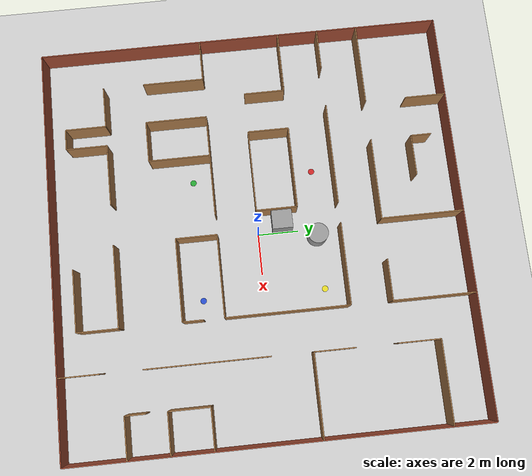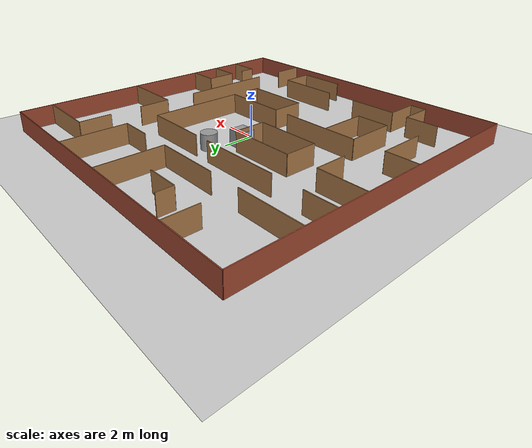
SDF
<sdf version="1.5">
 <world name="default">
  <light name="sun" type="directional">
   <pose>0 0 10 0 -0 0</pose>
   <diffuse>0.8 0.8 0.8 1</diffuse>
   <specular>0.2 0.2 0.2 1</specular>
   <attenuation>
    <range>1000</range>
    <constant>0.9</constant>
    <linear>0.01</linear>
    <quadratic>0.001</quadratic>
   </attenuation>
   <direction>-0.5 0.1 -0.9</direction>
  </light>
  <model name="ground_plane">
   <static>1</static>
   <link name="link">
    <collision name="collision">
     <geometry><plane><normal>0 0 1</normal><size>100 100</size></plane></geometry>
     <surface><friction><ode><mu>100</mu><mu2>50</mu2></ode></friction></surface>
    </collision>
    <visual name="visual">
     <cast_shadows>0</cast_shadows>
     <geometry><plane><normal>0 0 1</normal><size>100 100</size></plane></geometry>
     <material>
      <script><uri>file://media/materials/scripts/gazebo.material</uri><name>Gazebo/Grey</name></script>
     </material>
    </visual>
   </link>
  </model>
  <physics name="default_physics" default="0" type="ode">
   <real_time_update_rate>1000</real_time_update_rate>
   <max_step_size>0.001</max_step_size>
   <real_time_factor>1</real_time_factor>
   <ode>
    <solver>
     <type>quick</type>
     <iters>150</iters>
     <precon_iters>0</precon_iters>
     <sor>1.4</sor>
     <use_dynamic_moi_rescaling>1</use_dynamic_moi_rescaling>
    </solver>
    <constraints>
     <cfm>1e-05</cfm>
     <erp>0.2</erp>
     <contact_max_correcting_vel>2000</contact_max_correcting_vel>
     <contact_surface_layer>0.01</contact_surface_layer>
    </constraints>
   </ode>
  </physics>
  <model name="ros_symbol">
   <static>1</static>
   <link name="symbol">
    <collision name="OuterWall_0_Collision">
     <pose>0 -10 0 0 -0 0</pose>
     <geometry><box><size>20 0.05 2.5</size></box></geometry>
    </collision>
    <visual name="OuterWall_0_Visual">
     <pose>0 -10 0 0 -0 0</pose>
     <geometry><box><size>20 0.05 2.5</size></box></geometry>
     <material>
      <script><name>Gazebo/Bricks</name><uri>file://media/materials/scripts/gazebo.material</uri></script>
     </material>
    </visual>
    <collision name="OuterWall_1_Collision">
     <pose>0 10 0 0 -0 0</pose>
     <geometry><box><size>20 0.05 2.5</size></box></geometry>
    </collision>
    <visual name="OuterWall_1_Visual">
     <pose>0 10 0 0 -0 0</pose>
     <geometry><box><size>20 0.05 2.5</size></box></geometry>
     <material>
      <script><name>Gazebo/Bricks</name><uri>file://media/materials/scripts/gazebo.material</uri></script>
     </material>
    </visual>
    <collision name="OuterWall_2_Collision">
     <pose>10 0 0 0 -0 -1.5708</pose>
     <geometry><box><size>20 0.05 2.5</size></box></geometry>
    </collision>
    <visual name="OuterWall_2_Visual">
     <pose>10 0 0 0 -0 -1.5708</pose>
     <geometry><box><size>20 0.05 2.5</size></box></geometry>
     <material>
      <script><name>Gazebo/Bricks</name><uri>file://media/materials/scripts/gazebo.material</uri></script>
     </material>
    </visual>
    <collision name="OuterWall_3_Collision">
     <pose>-10 0 0 0 -0 -1.5708</pose>
     <geometry><box><size>20 0.05 2.5</size></box></geometry>
    </collision>
    <visual name="OuterWall_3_Visual">
     <pose>-10 0 0 0 -0 -1.5708</pose>
     <geometry><box><size>20 0.05 2.5</size></box></geometry>
     <material>
      <script><name>Gazebo/Bricks</name><uri>file://media/materials/scripts/gazebo.material</uri></script>
     </material>
    </visual>
    <collision name="Wall_1_Collision">
     <pose>8 8 0 0 -0 0</pose>
     <geometry><box><size>4 0.05 2.5</size></box></geometry>
    </collision>
    <visual name="Wall_1_Visual">
     <pose>8 8 0 0 -0 0</pose>
     <geometry><box><size>4 0.05 2.5</size></box></geometry>
     <material>
      <script><name>Gazebo/Wood</name><uri>file://media/materials/scripts/gazebo.material</uri></script>
     </material>
    </visual>
    <collision name="Wall_2_Collision">
     <pose>6 7 0 0 -0 -1.5707</pose>
     <geometry><box><size>2 0.05 2.5</size></box></geometry>
    </collision>
    <visual name="Wall_2_Visual">
     <pose>6 7 0 0 -0 -1.5707</pose>
     <geometry><box><size>2 0.05 2.5</size></box></geometry>
     <material>
      <script><name>Gazebo/Wood</name><uri>file://media/materials/scripts/gazebo.material</uri></script>
     </material>
    </visual>
    <collision name="Wall_3_Collision">
     <pose>6 3 0 0 -0 -1.5707</pose>
     <geometry><box><size>2 0.05 2.5</size></box></geometry>
    </collision>
    <visual name="Wall_3_Visual">
     <pose>6 3 0 0 -0 -1.5707</pose>
     <geometry><box><size>2 0.05 2.5</size></box></geometry>
     <material>
      <script><name>Gazebo/Wood</name><uri>file://media/materials/scripts/gazebo.material</uri></script>
     </material>
    </visual>
    <collision name="Wall_4_Collision">
     <pose>8 2 0 0 -0 0</pose>
     <geometry><box><size>4 0.05 2.5</size></box></geometry>
    </collision>
    <visual name="Wall_4_Visual">
     <pose>8 2 0 0 -0 0</pose>
     <geometry><box><size>4 0.05 2.5</size></box></geometry>
     <material>
      <script><name>Gazebo/Wood</name><uri>file://media/materials/scripts/gazebo.material</uri></script>
     </material>
    </visual>
    <collision name="Wall_5_Collision">
     <pose>6 -3 0 0 -0 -1.5707</pose>
     <geometry><box><size>6 0.05 2.5</size></box></geometry>
    </collision>
    <visual name="Wall_5_Visual">
     <pose>6 -3 0 0 -0 -1.5707</pose>
     <geometry><box><size>6 0.05 2.5</size></box></geometry>
     <material>
      <script><name>Gazebo/Wood</name><uri>file://media/materials/scripts/gazebo.material</uri></script>
     </material>
    </visual>
    <collision name="Wall_6_Collision">
     <pose>9 -3 0 0 -0 0</pose>
     <geometry><box><size>2 0.05 2.5</size></box></geometry>
    </collision>
    <visual name="Wall_6_Visual">
     <pose>9 -3 0 0 -0 0</pose>
     <geometry><box><size>2 0.05 2.5</size></box></geometry>
     <material>
      <script><name>Gazebo/Wood</name><uri>file://media/materials/scripts/gazebo.material</uri></script>
     </material>
    </visual>
    <collision name="Wall_7_Collision">
     <pose>8 -4 0 0 -0 -1.5707</pose>
     <geometry><box><size>2 0.05 2.5</size></box></geometry>
    </collision>
    <visual name="Wall_7_Visual">
     <pose>8 -4 0 0 -0 -1.5707</pose>
     <geometry><box><size>2 0.05 2.5</size></box></geometry>
     <material>
      <script><name>Gazebo/Wood</name><uri>file://media/materials/scripts/gazebo.material</uri></script>
     </material>
    </visual>
    <collision name="Wall_8_Collision">
     <pose>9 -5 0 0 -0 0</pose>
     <geometry><box><size>2 0.05 2.5</size></box></geometry>
    </collision>
    <visual name="Wall_8_Visual">
     <pose>9 -5 0 0 -0 0</pose>
     <geometry><box><size>2 0.05 2.5</size></box></geometry>
     <material>
      <script><name>Gazebo/Wood</name><uri>file://media/materials/scripts/gazebo.material</uri></script>
     </material>
    </visual>
    <collision name="Wall_9_Collision">
     <pose>8 -6.5 0 0 -0 -1.5707</pose>
     <geometry><box><size>1 0.05 2.5</size></box></geometry>
    </collision>
    <visual name="Wall_9_Visual">
     <pose>8 -6.5 0 0 -0 -1.5707</pose>
     <geometry><box><size>1 0.05 2.5</size></box></geometry>
     <material>
      <script><name>Gazebo/Wood</name><uri>file://media/materials/scripts/gazebo.material</uri></script>
     </material>
    </visual>
    <collision name="Wall_10_Collision">
     <pose>9 -7 0 0 -0 0</pose>
     <geometry><box><size>2 0.05 2.5</size></box></geometry>
    </collision>
    <visual name="Wall_10_Visual">
     <pose>9 -7 0 0 -0 0</pose>
     <geometry><box><size>2 0.05 2.5</size></box></geometry>
     <material>
      <script><name>Gazebo/Wood</name><uri>file://media/materials/scripts/gazebo.material</uri></script>
     </material>
    </visual>
    <collision name="Wall_11_Collision">
     <pose>6 -9 0 0 -0 -1.5707</pose>
     <geometry><box><size>2 0.05 2.5</size></box></geometry>
    </collision>
    <visual name="Wall_11_Visual">
     <pose>6 -9 0 0 -0 -1.5707</pose>
     <geometry><box><size>2 0.05 2.5</size></box></geometry>
     <material>
      <script><name>Gazebo/Wood</name><uri>file://media/materials/scripts/gazebo.material</uri></script>
     </material>
    </visual>
    <collision name="Wall_12_Collision">
     <pose>4 8 0 0 -0 -1.5707</pose>
     <geometry><box><size>4 0.05 2.5</size></box></geometry>
    </collision>
    <visual name="Wall_12_Visual">
     <pose>4 8 0 0 -0 -1.5707</pose>
     <geometry><box><size>4 0.05 2.5</size></box></geometry>
     <material>
      <script><name>Gazebo/Wood</name><uri>file://media/materials/scripts/gazebo.material</uri></script>
     </material>
    </visual>
    <collision name="Wall_13_Collision">
     <pose>3 6 0 0 -0 0</pose>
     <geometry><box><size>2 0.05 2.5</size></box></geometry>
    </collision>
    <visual name="Wall_13_Visual">
     <pose>3 6 0 0 -0 0</pose>
     <geometry><box><size>2 0.05 2.5</size></box></geometry>
     <material>
      <script><name>Gazebo/Wood</name><uri>file://media/materials/scripts/gazebo.material</uri></script>
     </material>
    </visual>
    <collision name="Wall_14_Collision">
     <pose>0 8 0 0 -0 -1.5707</pose>
     <geometry><box><size>4 0.05 2.5</size></box></geometry>
    </collision>
    <visual name="Wall_14_Visual">
     <pose>0 8 0 0 -0 -1.5707</pose>
     <geometry><box><size>4 0.05 2.5</size></box></geometry>
     <material>
      <script><name>Gazebo/Wood</name><uri>file://media/materials/scripts/gazebo.material</uri></script>
     </material>
    </visual>
    <collision name="Wall_15_Collision">
     <pose>-2 6 0 0 -0 0</pose>
     <geometry><box><size>4 0.05 2.5</size></box></geometry>
    </collision>
    <visual name="Wall_15_Visual">
     <pose>-2 6 0 0 -0 0</pose>
     <geometry><box><size>4 0.05 2.5</size></box></geometry>
     <material>
      <script><name>Gazebo/Wood</name><uri>file://media/materials/scripts/gazebo.material</uri></script>
     </material>
    </visual>
    <collision name="Wall_16_Collision">
     <pose>-3 8 0 0 -0 0</pose>
     <geometry><box><size>2 0.05 2.5</size></box></geometry>
    </collision>
    <visual name="Wall_16_Visual">
     <pose>-3 8 0 0 -0 0</pose>
     <geometry><box><size>2 0.05 2.5</size></box></geometry>
     <material>
      <script><name>Gazebo/Wood</name><uri>file://media/materials/scripts/gazebo.material</uri></script>
     </material>
    </visual>
    <collision name="Wall_17_Collision">
     <pose>-4 8.5 0 0 -0 -1.5707</pose>
     <geometry><box><size>1 0.05 2.5</size></box></geometry>
    </collision>
    <visual name="Wall_17_Visual">
     <pose>-4 8.5 0 0 -0 -1.5707</pose>
     <geometry><box><size>1 0.05 2.5</size></box></geometry>
     <material>
      <script><name>Gazebo/Wood</name><uri>file://media/materials/scripts/gazebo.material</uri></script>
     </material>
    </visual>
    <collision name="Wall_18_Collision">
     <pose>-6 9 0 0 -0 -1.5707</pose>
     <geometry><box><size>2 0.05 2.5</size></box></geometry>
    </collision>
    <visual name="Wall_18_Visual">
     <pose>-6 9 0 0 -0 -1.5707</pose>
     <geometry><box><size>2 0.05 2.5</size></box></geometry>
     <material>
      <script><name>Gazebo/Wood</name><uri>file://media/materials/scripts/gazebo.material</uri></script>
     </material>
    </visual>
    <collision name="Wall_19_Collision">
     <pose>-8 6 0 0 -0 0</pose>
     <geometry><box><size>4 0.05 2.5</size></box></geometry>
    </collision>
    <visual name="Wall_19_Visual">
     <pose>-8 6 0 0 -0 0</pose>
     <geometry><box><size>4 0.05 2.5</size></box></geometry>
     <material>
      <script><name>Gazebo/Wood</name><uri>file://media/materials/scripts/gazebo.material</uri></script>
     </material>
    </visual>
    <collision name="Wall_20_Collision">
     <pose>-9 4 0 0 -0 0</pose>
     <geometry><box><size>2 0.05 2.5</size></box></geometry>
    </collision>
    <visual name="Wall_20_Visual">
     <pose>-9 4 0 0 -0 0</pose>
     <geometry><box><size>2 0.05 2.5</size></box></geometry>
     <material>
      <script><name>Gazebo/Wood</name><uri>file://media/materials/scripts/gazebo.material</uri></script>
     </material>
    </visual>
    <collision name="Wall_21_Collision">
     <pose>-3.5 4 0 0 -0 0</pose>
     <geometry><box><size>5 0.05 2.5</size></box></geometry>
    </collision>
    <visual name="Wall_21_Visual">
     <pose>-3.5 4 0 0 -0 0</pose>
     <geometry><box><size>5 0.05 2.5</size></box></geometry>
     <material>
      <script><name>Gazebo/Wood</name><uri>file://media/materials/scripts/gazebo.material</uri></script>
     </material>
    </visual>
    <collision name="Wall_22_Collision">
     <pose>2 4 0 0 -0 0</pose>
     <geometry><box><size>4 0.05 2.5</size></box></geometry>
    </collision>
    <visual name="Wall_22_Visual">
     <pose>2 4 0 0 -0 0</pose>
     <geometry><box><size>4 0.05 2.5</size></box></geometry>
     <material>
      <script><name>Gazebo/Wood</name><uri>file://media/materials/scripts/gazebo.material</uri></script>
     </material>
    </visual>
    <collision name="Wall_23_Collision">
     <pose>4 1 0 0 -0 -1.5707</pose>
     <geometry><box><size>6 0.05 2.5</size></box></geometry>
    </collision>
    <visual name="Wall_23_Visual">
     <pose>4 1 0 0 -0 -1.5707</pose>
     <geometry><box><size>6 0.05 2.5</size></box></geometry>
     <material>
      <script><name>Gazebo/Wood</name><uri>file://media/materials/scripts/gazebo.material</uri></script>
     </material>
    </visual>
    <collision name="Wall_24_Collision">
     <pose>-1 1 0 0 -0 -1.5707</pose>
     <geometry><box><size>2 0.05 2.5</size></box></geometry>
    </collision>
    <visual name="Wall_24_Visual">
     <pose>-1 1 0 0 -0 -1.5707</pose>
     <geometry><box><size>2 0.05 2.5</size></box></geometry>
     <material>
      <script><name>Gazebo/Wood</name><uri>file://media/materials/scripts/gazebo.material</uri></script>
     </material>
    </visual>
    <collision name="Wall_25_Collision">
     <pose>-3 2 0 0 -0 0</pose>
     <geometry><box><size>4 0.05 2.5</size></box></geometry>
    </collision>
    <visual name="Wall_25_Visual">
     <pose>-3 2 0 0 -0 0</pose>
     <geometry><box><size>4 0.05 2.5</size></box></geometry>
     <material>
      <script><name>Gazebo/Wood</name><uri>file://media/materials/scripts/gazebo.material</uri></script>
     </material>
    </visual>
    <collision name="Wall_26_Collision">
     <pose>-3 0 0 0 -0 0</pose>
     <geometry><box><size>4 0.05 2.5</size></box></geometry>
    </collision>
    <visual name="Wall_26_Visual">
     <pose>-3 0 0 0 -0 0</pose>
     <geometry><box><size>4 0.05 2.5</size></box></geometry>
     <material>
      <script><name>Gazebo/Wood</name><uri>file://media/materials/scripts/gazebo.material</uri></script>
     </material>
    </visual>
    <collision name="Wall_27_Collision">
     <pose>-5 1 0 0 -0 -1.5707</pose>
     <geometry><box><size>2 0.05 2.5</size></box></geometry>
    </collision>
    <visual name="Wall_27_Visual">
     <pose>-5 1 0 0 -0 -1.5707</pose>
     <geometry><box><size>2 0.05 2.5</size></box></geometry>
     <material>
      <script><name>Gazebo/Wood</name><uri>file://media/materials/scripts/gazebo.material</uri></script>
     </material>
    </visual>
    <collision name="Wall_28_Collision">
     <pose>-7 1 0 0 -0 -1.5707</pose>
     <geometry><box><size>2 0.05 2.5</size></box></geometry>
    </collision>
    <visual name="Wall_28_Visual">
     <pose>-7 1 0 0 -0 -1.5707</pose>
     <geometry><box><size>2 0.05 2.5</size></box></geometry>
     <material>
      <script><name>Gazebo/Wood</name><uri>file://media/materials/scripts/gazebo.material</uri></script>
     </material>
    </visual>
    <collision name="Wall_29_Collision">
     <pose>-8.5 2 0 0 -0 0</pose>
     <geometry><box><size>3 0.05 2.5</size></box></geometry>
    </collision>
    <visual name="Wall_29_Visual">
     <pose>-8.5 2 0 0 -0 0</pose>
     <geometry><box><size>3 0.05 2.5</size></box></geometry>
     <material>
      <script><name>Gazebo/Wood</name><uri>file://media/materials/scripts/gazebo.material</uri></script>
     </material>
    </visual>
    <collision name="Wall_30_Collision">
     <pose>-7.5 2 0 0 -0 0</pose>
     <geometry><box><size>1 0.05 2.5</size></box></geometry>
    </collision>
    <visual name="Wall_30_Visual">
     <pose>-7.5 2 0 0 -0 0</pose>
     <geometry><box><size>1 0.05 2.5</size></box></geometry>
     <material>
      <script><name>Gazebo/Wood</name><uri>file://media/materials/scripts/gazebo.material</uri></script>
     </material>
    </visual>
    <collision name="Wall_31_Collision">
     <pose>-9 -2 0 0 -0 0</pose>
     <geometry><box><size>2 0.05 2.5</size></box></geometry>
    </collision>
    <visual name="Wall_31_Visual">
     <pose>-9 -2 0 0 -0 0</pose>
     <geometry><box><size>2 0.05 2.5</size></box></geometry>
     <material>
      <script><name>Gazebo/Wood</name><uri>file://media/materials/scripts/gazebo.material</uri></script>
     </material>
    </visual>
    <collision name="Wall_32_Collision">
     <pose>-8 -3.5 0 0 -0 -1.5707</pose>
     <geometry><box><size>3 0.05 2.5</size></box></geometry>
    </collision>
    <visual name="Wall_32_Visual">
     <pose>-8 -3.5 0 0 -0 -1.5707</pose>
     <geometry><box><size>3 0.05 2.5</size></box></geometry>
     <material>
      <script><name>Gazebo/Wood</name><uri>file://media/materials/scripts/gazebo.material</uri></script>
     </material>
    </visual>
    <collision name="Wall_33_Collision">
     <pose>-6 -3.5 0 0 -0 -1.5707</pose>
     <geometry><box><size>3 0.05 2.5</size></box></geometry>
    </collision>
    <visual name="Wall_33_Visual">
     <pose>-6 -3.5 0 0 -0 -1.5707</pose>
     <geometry><box><size>3 0.05 2.5</size></box></geometry>
     <material>
      <script><name>Gazebo/Wood</name><uri>file://media/materials/scripts/gazebo.material</uri></script>
     </material>
    </visual>
    <collision name="Wall_34_Collision">
     <pose>-5 -5 0 0 -0 0</pose>
     <geometry><box><size>2 0.05 2.5</size></box></geometry>
    </collision>
    <visual name="Wall_34_Visual">
     <pose>-5 -5 0 0 -0 0</pose>
     <geometry><box><size>2 0.05 2.5</size></box></geometry>
     <material>
      <script><name>Gazebo/Wood</name><uri>file://media/materials/scripts/gazebo.material</uri></script>
     </material>
    </visual>
    <collision name="Wall_35_Collision">
     <pose>-4 -3.5 0 0 -0 -1.5707</pose>
     <geometry><box><size>3 0.05 2.5</size></box></geometry>
    </collision>
    <visual name="Wall_35_Visual">
     <pose>-4 -3.5 0 0 -0 -1.5707</pose>
     <geometry><box><size>3 0.05 2.5</size></box></geometry>
     <material>
      <script><name>Gazebo/Wood</name><uri>file://media/materials/scripts/gazebo.material</uri></script>
     </material>
    </visual>
    <collision name="Wall_36_Collision">
     <pose>-3.5 -2 0 0 -0 0</pose>
     <geometry><box><size>5 0.05 2.5</size></box></geometry>
    </collision>
    <visual name="Wall_36_Visual">
     <pose>-3.5 -2 0 0 -0 0</pose>
     <geometry><box><size>5 0.05 2.5</size></box></geometry>
     <material>
      <script><name>Gazebo/Wood</name><uri>file://media/materials/scripts/gazebo.material</uri></script>
     </material>
    </visual>
    <collision name="Wall_37_Collision">
     <pose>2 -2 0 0 -0 0</pose>
     <geometry><box><size>4 0.05 2.5</size></box></geometry>
    </collision>
    <visual name="Wall_37_Visual">
     <pose>2 -2 0 0 -0 0</pose>
     <geometry><box><size>4 0.05 2.5</size></box></geometry>
     <material>
      <script><name>Gazebo/Wood</name><uri>file://media/materials/scripts/gazebo.material</uri></script>
     </material>
    </visual>
    <collision name="Wall_38_Collision">
     <pose>-0 -3 0 0 -0 -1.5707</pose>
     <geometry><box><size>2 0.05 2.5</size></box></geometry>
    </collision>
    <visual name="Wall_38_Visual">
     <pose>-0 -3 0 0 -0 -1.5707</pose>
     <geometry><box><size>2 0.05 2.5</size></box></geometry>
     <material>
      <script><name>Gazebo/Wood</name><uri>file://media/materials/scripts/gazebo.material</uri></script>
     </material>
    </visual>
    <collision name="Wall_39_Collision">
     <pose>2 -4 0 0 -0 0</pose>
     <geometry><box><size>4 0.05 2.5</size></box></geometry>
    </collision>
    <visual name="Wall_39_Visual">
     <pose>2 -4 0 0 -0 0</pose>
     <geometry><box><size>4 0.05 2.5</size></box></geometry>
     <material>
      <script><name>Gazebo/Wood</name><uri>file://media/materials/scripts/gazebo.material</uri></script>
     </material>
    </visual>
    <collision name="Wall_40_Collision">
     <pose>4 -3.5 0 0 -0 -1.5707</pose>
     <geometry><box><size>1 0.05 2.5</size></box></geometry>
    </collision>
    <visual name="Wall_40_Visual">
     <pose>4 -3.5 0 0 -0 -1.5707</pose>
     <geometry><box><size>1 0.05 2.5</size></box></geometry>
     <material>
      <script><name>Gazebo/Wood</name><uri>file://media/materials/scripts/gazebo.material</uri></script>
     </material>
    </visual>
    <collision name="Wall_41_Collision">
     <pose>4 -8 0 0 -0 -1.5707</pose>
     <geometry><box><size>2 0.05 2.5</size></box></geometry>
    </collision>
    <visual name="Wall_41_Visual">
     <pose>4 -8 0 0 -0 -1.5707</pose>
     <geometry><box><size>2 0.05 2.5</size></box></geometry>
     <material>
      <script><name>Gazebo/Wood</name><uri>file://media/materials/scripts/gazebo.material</uri></script>
     </material>
    </visual>
    <collision name="Wall_42_Collision">
     <pose>2.5 -9 0 0 -0 0</pose>
     <geometry><box><size>3 0.05 2.5</size></box></geometry>
    </collision>
    <visual name="Wall_42_Visual">
     <pose>2.5 -9 0 0 -0 0</pose>
     <geometry><box><size>3 0.05 2.5</size></box></geometry>
     <material>
      <script><name>Gazebo/Wood</name><uri>file://media/materials/scripts/gazebo.material</uri></script>
     </material>
    </visual>
    <collision name="Wall_43_Collision">
     <pose>2 -7 0 0 -0 0</pose>
     <geometry><box><size>4 0.05 2.5</size></box></geometry>
    </collision>
    <visual name="Wall_43_Visual">
     <pose>2 -7 0 0 -0 0</pose>
     <geometry><box><size>4 0.05 2.5</size></box></geometry>
     <material>
      <script><name>Gazebo/Wood</name><uri>file://media/materials/scripts/gazebo.material</uri></script>
     </material>
    </visual>
    <collision name="Wall_44_Collision">
     <pose>-3.5 -7 0 0 -0 0</pose>
     <geometry><box><size>3 0.05 2.5</size></box></geometry>
    </collision>
    <visual name="Wall_44_Visual">
     <pose>-3.5 -7 0 0 -0 0</pose>
     <geometry><box><size>3 0.05 2.5</size></box></geometry>
     <material>
      <script><name>Gazebo/Wood</name><uri>file://media/materials/scripts/gazebo.material</uri></script>
     </material>
    </visual>
    <collision name="Wall_45_Collision">
     <pose>-5 -8 0 0 -0 -1.5707</pose>
     <geometry><box><size>2 0.05 2.5</size></box></geometry>
    </collision>
    <visual name="Wall_45_Visual">
     <pose>-5 -8 0 0 -0 -1.5707</pose>
     <geometry><box><size>2 0.05 2.5</size></box></geometry>
     <material>
      <script><name>Gazebo/Wood</name><uri>file://media/materials/scripts/gazebo.material</uri></script>
     </material>
    </visual>
    <collision name="Wall_46_Collision">
     <pose>-5.5 -9 0 0 -0 0</pose>
     <geometry><box><size>1 0.05 2.5</size></box></geometry>
    </collision>
    <visual name="Wall_46_Visual">
     <pose>-5.5 -9 0 0 -0 0</pose>
     <geometry><box><size>1 0.05 2.5</size></box></geometry>
     <material>
      <script><name>Gazebo/Wood</name><uri>file://media/materials/scripts/gazebo.material</uri></script>
     </material>
    </visual>
    <collision name="Wall_47_Collision">
     <pose>-6 -8 0 0 -0 -1.5707</pose>
     <geometry><box><size>2 0.05 2.5</size></box></geometry>
    </collision>
    <visual name="Wall_47_Visual">
     <pose>-6 -8 0 0 -0 -1.5707</pose>
     <geometry><box><size>2 0.05 2.5</size></box></geometry>
     <material>
      <script><name>Gazebo/Wood</name><uri>file://media/materials/scripts/gazebo.material</uri></script>
     </material>
    </visual>
    <collision name="Wall_48_Collision">
     <pose>-7 -7 0 0 -0 0</pose>
     <geometry><box><size>2 0.05 2.5</size></box></geometry>
    </collision>
    <visual name="Wall_48_Visual">
     <pose>-7 -7 0 0 -0 0</pose>
     <geometry><box><size>2 0.05 2.5</size></box></geometry>
     <material>
      <script><name>Gazebo/Wood</name><uri>file://media/materials/scripts/gazebo.material</uri></script>
     </material>
    </visual>
    <visual name="btm_right">
     <pose>-3 -3 0 0 -0 0</pose>
     <geometry><cylinder><radius>0.15</radius><length>0.01</length></cylinder></geometry>
     <material>
      <script><uri>file://media/materials/scripts/gazebo.material</uri><name>Gazebo/Green</name></script>
     </material>
    </visual>
    <visual name="btm_left">
     <pose>-3 3 0 0 -0 0</pose>
     <geometry><cylinder><radius>0.15</radius><length>0.01</length></cylinder></geometry>
     <material>
      <script><uri>file://media/materials/scripts/gazebo.material</uri><name>Gazebo/Red</name></script>
     </material>
    </visual>
    <visual name="top_right">
     <pose>3 -3 0 0 -0 0</pose>
     <geometry><cylinder><radius>0.15</radius><length>0.01</length></cylinder></geometry>
     <material>
      <script><uri>file://media/materials/scripts/gazebo.material</uri><name>Gazebo/Blue</name></script>
     </material>
    </visual>
    <visual name="top_left">
     <pose>3 3 0 0 -0 0</pose>
     <geometry><cylinder><radius>0.15</radius><length>0.01</length></cylinder></geometry>
     <material>
      <script><uri>file://media/materials/scripts/gazebo.material</uri><name>Gazebo/Yellow</name></script>
     </material>
    </visual>
   </link>
  </model>
  <scene><ambient>1 1 1 1</ambient><background>1 1 1 1</background><shadows>1</shadows></scene>
  <gravity>0 0 -9.8</gravity>
  <magnetic_field>6e-06 2.3e-05 -4.2e-05</magnetic_field>
  <atmosphere type="adiabatic"/>
  <audio><device>default</device></audio>
  <spherical_coordinates>
   <surface_model>EARTH_WGS84</surface_model>
   <latitude_deg>0</latitude_deg>
   <longitude_deg>0</longitude_deg>
   <elevation>0</elevation>
   <heading_deg>0</heading_deg>
  </spherical_coordinates>
  <model name="unit_cylinder">
   <pose>0.357364 2.89106 0.5 0 -0 0</pose>
   <link name="link">
    <inertial>
     <mass>1</mass>
     <inertia><ixx>0.145833</ixx><ixy>0</ixy><ixz>0</ixz><iyy>0.145833</iyy><iyz>0</iyz><izz>0.125</izz></inertia>
    </inertial>
    <collision name="collision">
     <geometry><cylinder><radius>0.5</radius><length>1</length></cylinder></geometry>
    </collision>
    <visual name="visual">
     <geometry><cylinder><radius>0.5</radius><length>1</length></cylinder></geometry>
     <material>
      <script><name>Gazebo/Grey</name><uri>file://media/materials/scripts/gazebo.material</uri></script>
     </material>
    </visual>
   </link>
  </model>
  <model name="unit_box">
   <pose>-0.554393 1.21262 0.5 0 -0 0</pose>
   <link name="link">
    <inertial>
     <mass>1</mass>
     <inertia>
      <ixx>0.166667</ixx>
      <ixy>0</ixy>
      <ixz>0</ixz>
      <iyy>0.166667</iyy>
      <iyz>0</iyz>
      <izz>0.166667</izz>
     </inertia>
    </inertial>
    <collision name="collision"><geometry><box><size>1 1 1</size></box></geometry></collision>
    <visual name="visual">
     <geometry><box><size>1 1 1</size></box></geometry>
     <material>
      <script><name>Gazebo/Grey</name><uri>file://media/materials/scripts/gazebo.material</uri></script>
     </material>
    </visual>
   </link>
  </model>
 </world>
</sdf>
